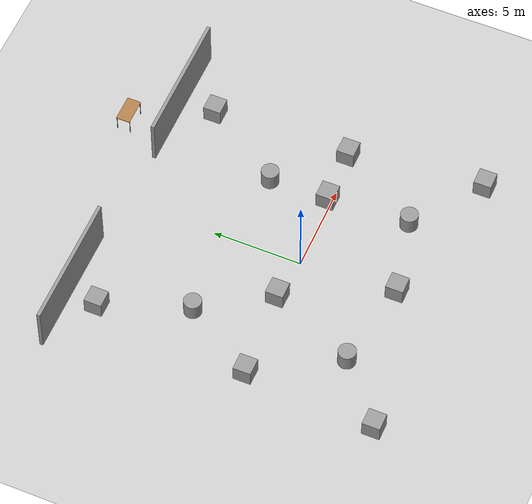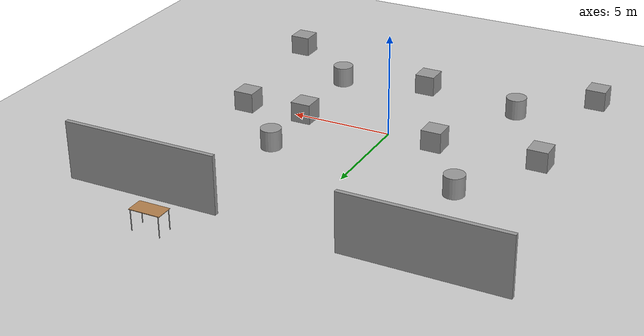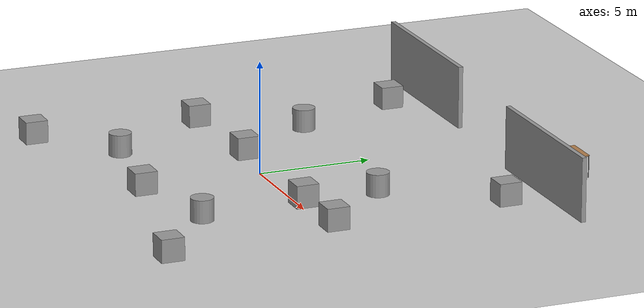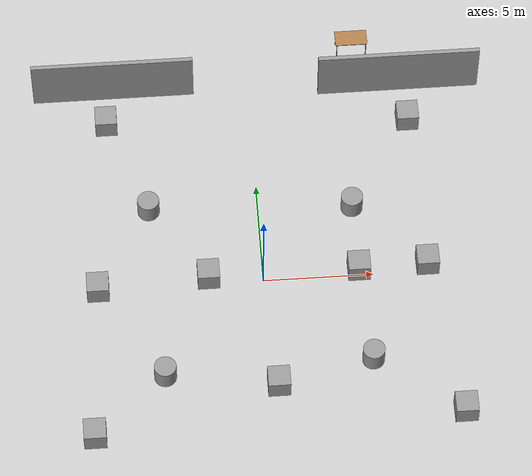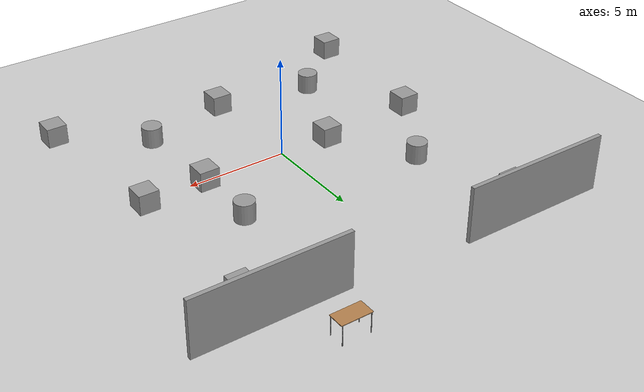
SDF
<sdf version="1.7">
 <world name="default">
  <light name="sun" type="directional">
   <pose>0 0 10 0 -0 0</pose>
   <diffuse>0.8 0.8 0.8 1</diffuse>
   <specular>0.2 0.2 0.2 1</specular>
   <attenuation>
    <range>1000</range>
    <constant>0.9</constant>
    <linear>0.01</linear>
    <quadratic>0.001</quadratic>
   </attenuation>
   <direction>-0.5 0.1 -0.9</direction>
   <spot><inner_angle>0</inner_angle><outer_angle>0</outer_angle><falloff>0</falloff></spot>
  </light>
  <model name="ground_plane">
   <static>1</static>
   <link name="link">
    <collision name="collision">
     <geometry><plane><normal>0 0 1</normal><size>100 100</size></plane></geometry>
     <surface><friction><ode><mu>100</mu><mu2>50</mu2></ode></friction></surface>
    </collision>
    <visual name="visual">
     <cast_shadows>0</cast_shadows>
     <geometry><plane><normal>0 0 1</normal><size>100 100</size></plane></geometry>
     <material>
      <script><uri>file://media/materials/scripts/gazebo.material</uri><name>Gazebo/Grey</name></script>
     </material>
    </visual>
   </link>
  </model>
  <gravity>0 0 -9.8</gravity>
  <magnetic_field>6e-06 2.3e-05 -4.2e-05</magnetic_field>
  <atmosphere type="adiabatic"/>
  <physics type="ode">
   <max_step_size>0.001</max_step_size>
   <real_time_factor>1</real_time_factor>
   <real_time_update_rate>1000</real_time_update_rate>
  </physics>
  <scene><ambient>0.4 0.4 0.4 1</ambient><background>0.7 0.7 0.7 1</background><shadows>1</shadows></scene>
  <audio><device>default</device></audio>
  <spherical_coordinates>
   <surface_model>EARTH_WGS84</surface_model>
   <latitude_deg>0</latitude_deg>
   <longitude_deg>0</longitude_deg>
   <elevation>0</elevation>
   <heading_deg>0</heading_deg>
  </spherical_coordinates>
  <model name="table">
   <static>1</static>
   <link name="table_link">
    <collision name="surface">
     <pose>0 0 1 0 -0 0</pose>
     <geometry><box><size>1.5 0.8 0.03</size></box></geometry>
     <surface><friction><ode><mu>0.6</mu><mu2>0.6</mu2></ode></friction></surface>
    </collision>
    <visual name="visual1">
     <pose>0 0 1 0 -0 0</pose>
     <geometry><box><size>1.5 0.8 0.03</size></box></geometry>
     <material>
      <script><uri>file://media/materials/scripts/gazebo.material</uri><name>Gazebo/Wood</name></script>
     </material>
    </visual>
    <collision name="front_left_leg">
     <pose>0.68 0.38 0.5 0 -0 0</pose>
     <geometry><cylinder><radius>0.02</radius><length>1</length></cylinder></geometry>
    </collision>
    <visual name="front_left_leg_visual">
     <pose>0.68 0.38 0.5 0 -0 0</pose>
     <geometry><cylinder><radius>0.02</radius><length>1</length></cylinder></geometry>
     <material>
      <script><uri>file://media/materials/scripts/gazebo.material</uri><name>Gazebo/Grey</name></script>
     </material>
    </visual>
    <collision name="front_right_leg">
     <pose>0.68 -0.38 0.5 0 -0 0</pose>
     <geometry><cylinder><radius>0.02</radius><length>1</length></cylinder></geometry>
    </collision>
    <visual name="front_right_leg_visual">
     <pose>0.68 -0.38 0.5 0 -0 0</pose>
     <geometry><cylinder><radius>0.02</radius><length>1</length></cylinder></geometry>
     <material>
      <script><uri>file://media/materials/scripts/gazebo.material</uri><name>Gazebo/Grey</name></script>
     </material>
    </visual>
    <collision name="back_right_leg">
     <pose>-0.68 -0.38 0.5 0 -0 0</pose>
     <geometry><cylinder><radius>0.02</radius><length>1</length></cylinder></geometry>
    </collision>
    <visual name="back_right_leg_visual">
     <pose>-0.68 -0.38 0.5 0 -0 0</pose>
     <geometry><cylinder><radius>0.02</radius><length>1</length></cylinder></geometry>
     <material>
      <script><uri>file://media/materials/scripts/gazebo.material</uri><name>Gazebo/Grey</name></script>
     </material>
    </visual>
    <collision name="back_left_leg">
     <pose>-0.68 0.38 0.5 0 -0 0</pose>
     <geometry><cylinder><radius>0.02</radius><length>1</length></cylinder></geometry>
    </collision>
    <visual name="back_left_leg_visual">
     <pose>-0.68 0.38 0.5 0 -0 0</pose>
     <geometry><cylinder><radius>0.02</radius><length>1</length></cylinder></geometry>
     <material>
      <script><uri>file://media/materials/scripts/gazebo.material</uri><name>Gazebo/Grey</name></script>
     </material>
    </visual>
   </link>
   <pose>5.01111 12.3595 0 0 -0 0</pose>
  </model>
  <model name="unit_cylinder">
   <pose>4.31847 3.61064 0.499998 3e-06 -2e-06 0</pose>
   <link name="link">
    <inertial>
     <mass>1</mass>
     <inertia><ixx>0.145833</ixx><ixy>0</ixy><ixz>0</ixz><iyy>0.145833</iyy><iyz>0</iyz><izz>0.125</izz></inertia>
    </inertial>
    <collision name="collision">
     <geometry><cylinder><radius>0.5</radius><length>1</length></cylinder></geometry>
    </collision>
    <visual name="visual">
     <geometry><cylinder><radius>0.5</radius><length>1</length></cylinder></geometry>
     <material>
      <script><name>Gazebo/Grey</name><uri>file://media/materials/scripts/gazebo.material</uri></script>
     </material>
    </visual>
   </link>
  </model>
  <model name="unit_cylinder_clone">
   <pose>-5.00162 4.03334 0.499993 -3e-06 2e-06 0</pose>
   <link name="link">
    <inertial>
     <mass>1</mass>
     <inertia><ixx>0.145833</ixx><ixy>0</ixy><ixz>0</ixz><iyy>0.145833</iyy><iyz>0</iyz><izz>0.125</izz></inertia>
    </inertial>
    <collision name="collision">
     <geometry><cylinder><radius>0.5</radius><length>1</length></cylinder></geometry>
    </collision>
    <visual name="visual">
     <geometry><cylinder><radius>0.5</radius><length>1</length></cylinder></geometry>
     <material>
      <script><name>Gazebo/Grey</name><uri>file://media/materials/scripts/gazebo.material</uri></script>
     </material>
    </visual>
   </link>
  </model>
  <model name="unit_cylinder_clone_0">
   <pose>-4.69379 -4.62785 0.499993 -3e-06 2e-06 0</pose>
   <link name="link">
    <inertial>
     <mass>1</mass>
     <inertia><ixx>0.145833</ixx><ixy>0</ixy><ixz>0</ixz><iyy>0.145833</iyy><iyz>0</iyz><izz>0.125</izz></inertia>
    </inertial>
    <collision name="collision">
     <geometry><cylinder><radius>0.5</radius><length>1</length></cylinder></geometry>
    </collision>
    <visual name="visual">
     <geometry><cylinder><radius>0.5</radius><length>1</length></cylinder></geometry>
     <material>
      <script><name>Gazebo/Grey</name><uri>file://media/materials/scripts/gazebo.material</uri></script>
     </material>
    </visual>
   </link>
  </model>
  <model name="unit_cylinder_clone_1">
   <pose>4.62153 -4.38394 0.499993 -3e-06 2e-06 0</pose>
   <link name="link">
    <inertial>
     <mass>1</mass>
     <inertia><ixx>0.145833</ixx><ixy>0</ixy><ixz>0</ixz><iyy>0.145833</iyy><iyz>0</iyz><izz>0.125</izz></inertia>
    </inertial>
    <collision name="collision">
     <geometry><cylinder><radius>0.5</radius><length>1</length></cylinder></geometry>
    </collision>
    <visual name="visual">
     <geometry><cylinder><radius>0.5</radius><length>1</length></cylinder></geometry>
     <material>
      <script><name>Gazebo/Grey</name><uri>file://media/materials/scripts/gazebo.material</uri></script>
     </material>
    </visual>
   </link>
  </model>
  <model name="unit_box">
   <pose>7.29186 8.16661 0.499995 0 1e-05 0</pose>
   <link name="link">
    <inertial>
     <mass>1</mass>
     <inertia>
      <ixx>0.166667</ixx>
      <ixy>0</ixy>
      <ixz>0</ixz>
      <iyy>0.166667</iyy>
      <iyz>0</iyz>
      <izz>0.166667</izz>
     </inertia>
    </inertial>
    <collision name="collision"><geometry><box><size>1 1 1</size></box></geometry></collision>
    <visual name="visual">
     <geometry><box><size>1 1 1</size></box></geometry>
     <material>
      <script><name>Gazebo/Grey</name><uri>file://media/materials/scripts/gazebo.material</uri></script>
     </material>
    </visual>
   </link>
  </model>
  <model name="unit_box_clone">
   <pose>-6.73673 8.81121 0.499995 1e-05 -0 0</pose>
   <link name="link">
    <inertial>
     <mass>1</mass>
     <inertia>
      <ixx>0.166667</ixx>
      <ixy>0</ixy>
      <ixz>0</ixz>
      <iyy>0.166667</iyy>
      <iyz>0</iyz>
      <izz>0.166667</izz>
     </inertia>
    </inertial>
    <collision name="collision"><geometry><box><size>1 1 1</size></box></geometry></collision>
    <visual name="visual">
     <geometry><box><size>1 1 1</size></box></geometry>
     <material>
      <script><name>Gazebo/Grey</name><uri>file://media/materials/scripts/gazebo.material</uri></script>
     </material>
    </visual>
   </link>
  </model>
  <model name="unit_box_clone_0">
   <pose>-7.94313 -7.47778 0.499995 0 -1e-05 0</pose>
   <link name="link">
    <inertial>
     <mass>1</mass>
     <inertia>
      <ixx>0.166667</ixx>
      <ixy>0</ixy>
      <ixz>0</ixz>
      <iyy>0.166667</iyy>
      <iyz>0</iyz>
      <izz>0.166667</izz>
     </inertia>
    </inertial>
    <collision name="collision"><geometry><box><size>1 1 1</size></box></geometry></collision>
    <visual name="visual">
     <geometry><box><size>1 1 1</size></box></geometry>
     <material>
      <script><name>Gazebo/Grey</name><uri>file://media/materials/scripts/gazebo.material</uri></script>
     </material>
    </visual>
   </link>
  </model>
  <model name="unit_box_clone_1">
   <pose>8.46728 -7.26903 0.499995 1e-05 -0 0</pose>
   <link name="link">
    <inertial>
     <mass>1</mass>
     <inertia>
      <ixx>0.166667</ixx>
      <ixy>0</ixy>
      <ixz>0</ixz>
      <iyy>0.166667</iyy>
      <iyz>0</iyz>
      <izz>0.166667</izz>
     </inertia>
    </inertial>
    <collision name="collision"><geometry><box><size>1 1 1</size></box></geometry></collision>
    <visual name="visual">
     <geometry><box><size>1 1 1</size></box></geometry>
     <material>
      <script><name>Gazebo/Grey</name><uri>file://media/materials/scripts/gazebo.material</uri></script>
     </material>
    </visual>
   </link>
  </model>
  <model name="grey_wall">
   <static>1</static>
   <link name="link">
    <pose>0 0 1.4 0 -0 0</pose>
    <collision name="collision"><geometry><box><size>7.5 0.2 2.8</size></box></geometry></collision>
    <visual name="visual">
     <cast_shadows>0</cast_shadows>
     <geometry><box><size>7.5 0.2 2.8</size></box></geometry>
     <material>
      <script>
       <uri>model://grey_wall/materials/scripts</uri>
       <uri>model://grey_wall/materials/textures</uri>
       <name>vrc/grey_wall</name>
      </script>
     </material>
    </visual>
   </link>
   <pose>-6.31169 10.4689 0 0 -0 0</pose>
  </model>
  <model name="grey_wall_clone">
   <static>1</static>
   <link name="link">
    <pose>0 0 1.4 0 -0 0</pose>
    <collision name="collision"><geometry><box><size>7.5 0.2 2.8</size></box></geometry></collision>
    <visual name="visual">
     <cast_shadows>0</cast_shadows>
     <geometry><box><size>7.5 0.2 2.8</size></box></geometry>
     <material>
      <script>
       <uri>model://grey_wall/materials/scripts</uri>
       <uri>model://grey_wall/materials/textures</uri>
       <name>vrc/grey_wall</name>
      </script>
     </material>
    </visual>
   </link>
   <pose>7.01955 10.0694 0 0 -0 0</pose>
  </model>
  <model name="unit_box_0">
   <pose>4.3556 0.239756 0.499995 0 1e-05 0</pose>
   <link name="link">
    <inertial>
     <mass>1</mass>
     <inertia>
      <ixx>0.166667</ixx>
      <ixy>0</ixy>
      <ixz>0</ixz>
      <iyy>0.166667</iyy>
      <iyz>0</iyz>
      <izz>0.166667</izz>
     </inertia>
    </inertial>
    <collision name="collision"><geometry><box><size>1 1 1</size></box></geometry></collision>
    <visual name="visual">
     <geometry><box><size>1 1 1</size></box></geometry>
     <material>
      <script><name>Gazebo/Grey</name><uri>file://media/materials/scripts/gazebo.material</uri></script>
     </material>
    </visual>
   </link>
  </model>
  <model name="unit_box_0_clone">
   <pose>-2.47585 0.262812 0.499995 1e-05 -0 0</pose>
   <link name="link">
    <inertial>
     <mass>1</mass>
     <inertia>
      <ixx>0.166667</ixx>
      <ixy>0</ixy>
      <ixz>0</ixz>
      <iyy>0.166667</iyy>
      <iyz>0</iyz>
      <izz>0.166667</izz>
     </inertia>
    </inertial>
    <collision name="collision"><geometry><box><size>1 1 1</size></box></geometry></collision>
    <visual name="visual">
     <geometry><box><size>1 1 1</size></box></geometry>
     <material>
      <script><name>Gazebo/Grey</name><uri>file://media/materials/scripts/gazebo.material</uri></script>
     </material>
    </visual>
   </link>
  </model>
  <model name="unit_box_0_clone_0">
   <pose>-7.50033 -0.075947 0.499995 0 -1e-05 0</pose>
   <link name="link">
    <inertial>
     <mass>1</mass>
     <inertia>
      <ixx>0.166667</ixx>
      <ixy>0</ixy>
      <ixz>0</ixz>
      <iyy>0.166667</iyy>
      <iyz>0</iyz>
      <izz>0.166667</izz>
     </inertia>
    </inertial>
    <collision name="collision"><geometry><box><size>1 1 1</size></box></geometry></collision>
    <visual name="visual">
     <geometry><box><size>1 1 1</size></box></geometry>
     <material>
      <script><name>Gazebo/Grey</name><uri>file://media/materials/scripts/gazebo.material</uri></script>
     </material>
    </visual>
   </link>
  </model>
  <model name="unit_box_0_clone_1">
   <pose>7.48517 0.330716 0.499995 1e-05 -0 0</pose>
   <link name="link">
    <inertial>
     <mass>1</mass>
     <inertia>
      <ixx>0.166667</ixx>
      <ixy>0</ixy>
      <ixz>0</ixz>
      <iyy>0.166667</iyy>
      <iyz>0</iyz>
      <izz>0.166667</izz>
     </inertia>
    </inertial>
    <collision name="collision"><geometry><box><size>1 1 1</size></box></geometry></collision>
    <visual name="visual">
     <geometry><box><size>1 1 1</size></box></geometry>
     <material>
      <script><name>Gazebo/Grey</name><uri>file://media/materials/scripts/gazebo.material</uri></script>
     </material>
    </visual>
   </link>
  </model>
  <model name="unit_box_0_clone_2">
   <pose>0.311233 -5.4303 0.499995 0 -1e-05 0</pose>
   <link name="link">
    <inertial>
     <mass>1</mass>
     <inertia>
      <ixx>0.166667</ixx>
      <ixy>0</ixy>
      <ixz>0</ixz>
      <iyy>0.166667</iyy>
      <iyz>0</iyz>
      <izz>0.166667</izz>
     </inertia>
    </inertial>
    <collision name="collision"><geometry><box><size>1 1 1</size></box></geometry></collision>
    <visual name="visual">
     <geometry><box><size>1 1 1</size></box></geometry>
     <material>
      <script><name>Gazebo/Grey</name><uri>file://media/materials/scripts/gazebo.material</uri></script>
     </material>
    </visual>
   </link>
  </model>
 </world>
</sdf>
